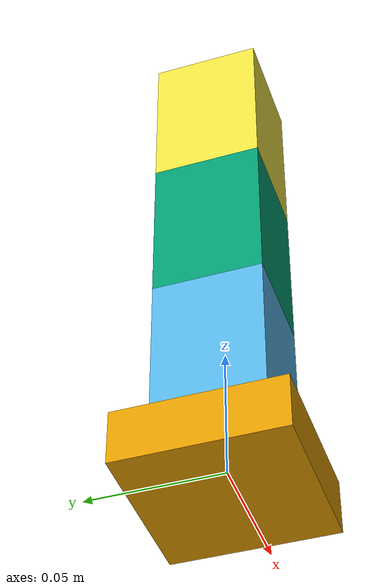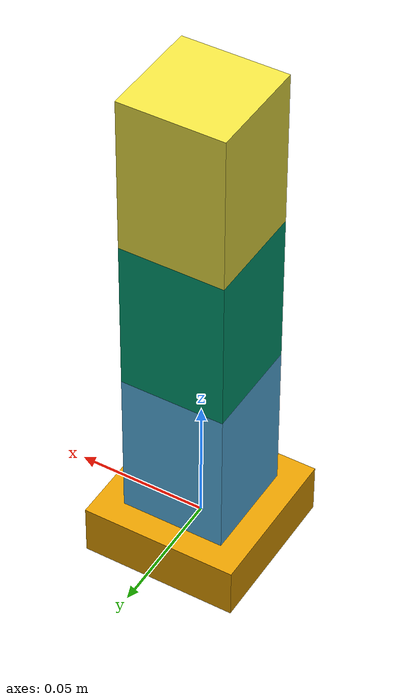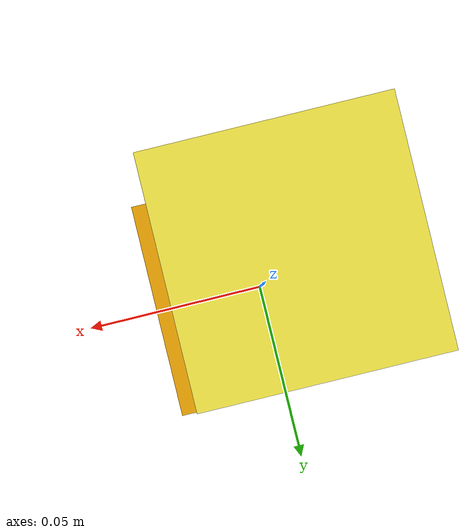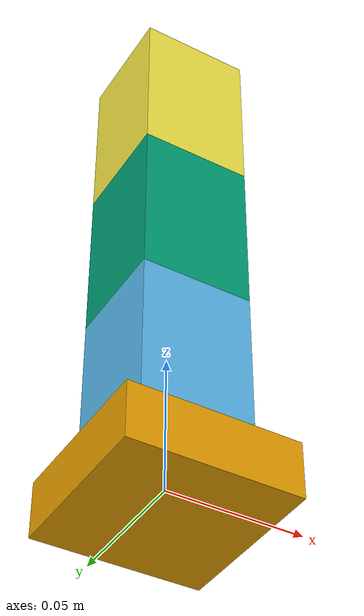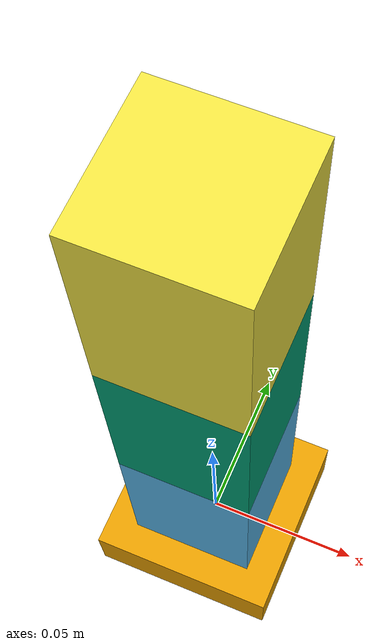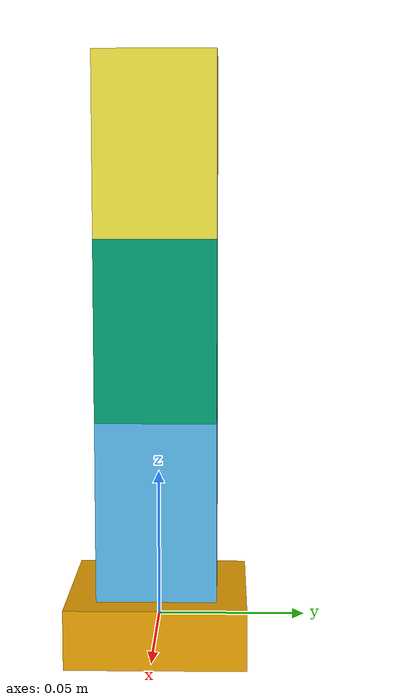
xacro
<?xml version="1.0"?>
<robot name="car" xmlns:xacro="http://www.ros.org/wiki/xacro">
<xacro:macro name="part" params="prefix mom son size z">
 <link name="${prefix}_part">
  <visual>
   <geometry>
    <box size="${size} 0.04 0.04"/>
    <material name="black">
      <color rgba="0 0 0 1"/>
    </material>
   </geometry>
   <origin rpy="0 1.57075 0" xyz="0 0 ${(size)/2}"/>
  </visual>
 </link>
 <joint name="${prefix}_joint" type="continuous">
  <axis xyz="1 0 0"/>
  <parent link="${mom}"/>
  <child link="${son}_part"/>
  <origin xyz="0 0 ${z}"/>
 </joint>
</xacro:macro>

<link name="base">
  <visual>
   <geometry>
    <box size="0.06 0.06 0.02"/>
    <material name="black">
      <color rgba="0 0 0 1"/>
    </material>
   </geometry>
   <origin rpy="0 0 0" xyz="0 0 0"/>
  </visual>
</link>

<xacro:part prefix="first" mom="base" son="first" size="0.06" z="0.01"/>
<xacro:part prefix="second" mom="first_part" son="second" size="0.06" z="0.06"/>
<xacro:part prefix="third" mom="second_part" son="third" size="0.06" z="0.06"/>
</robot>
